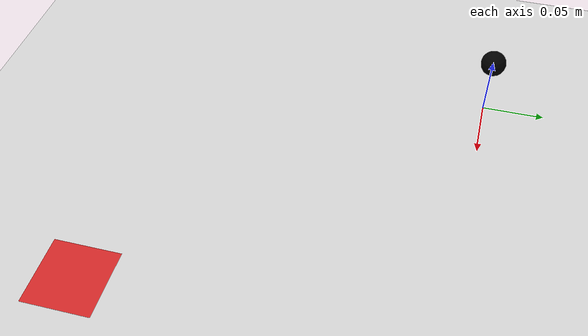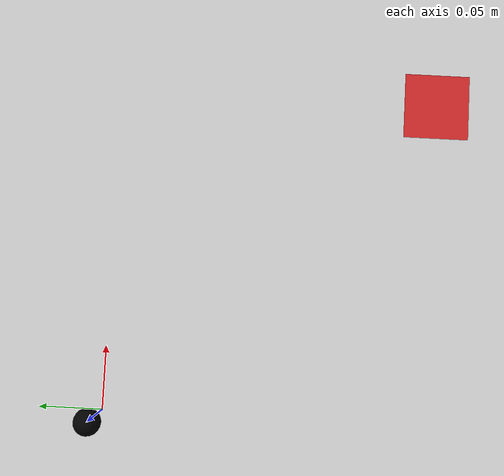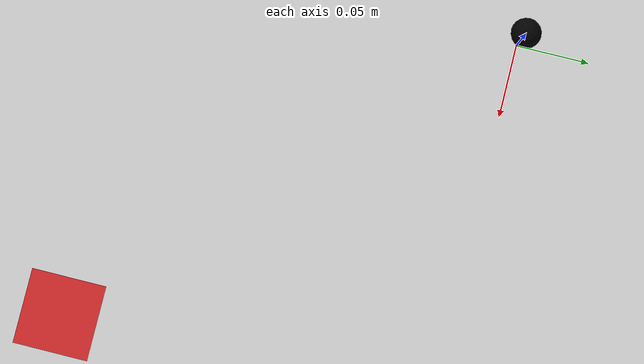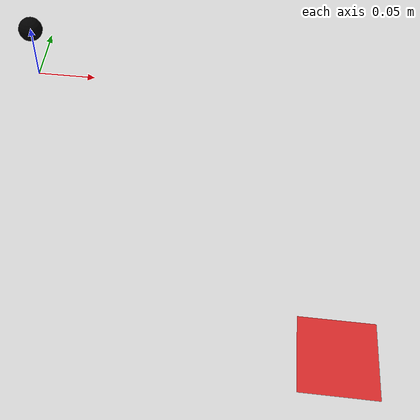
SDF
<?xml version="1.0" ?>
<sdf version="1.7">
  <world name="default">

    <!-- Plugin for simulating physics -->
    <plugin
      filename="gz-sim-physics-system"
      name="gz::sim::systems::Physics">
    </plugin>

    <!-- Plugin for handling user commands -->
    <plugin
      filename="gz-sim-user-commands-system"
      name="gz::sim::systems::UserCommands">
    </plugin>

    <!-- Plugin for broadcasting scene updates -->
    <plugin
      filename="gz-sim-scene-broadcaster-system"
      name="gz::sim::systems::SceneBroadcaster">
    </plugin>

    <!-- Plugin for sensor handling -->
    <plugin
      filename="gz-sim-sensors-system"
      name="gz::sim::systems::Sensors">
      <render_engine>ogre2</render_engine>
    </plugin>

    <!-- To add realistic gravity, do: 0.0 0.0 -9.8, otherwise do 0.0 0.0 0.0 -->
    <gravity>0.0 0.0 -9.8</gravity>

    <!-- Include a model of the Sun from an external URI -->
    <include>
      <uri>
        https://fuel.gazebosim.org/1.0/OpenRobotics/models/Sun
      </uri>
    </include>

    <!-- Include a model of the Ground Plane from an external URI -->
    <include>
      <uri>
        https://fuel.gazebosim.org/1.0/OpenRobotics/models/Ground Plane
      </uri>
    </include>

    <!-- Include the cylinder model -->
    <model name="wood_cube_5cm">
      <pose>0.25 -0.25 0.0 0 0 0</pose>
      <link name="link">
        <pose>0 0 0.025 0 0 0</pose>
        <inertial>
          <mass>0.0565</mass>
          <inertia>
            <ixx>2.3541666666666672e-05</ixx>
            <ixy>0</ixy>
            <ixz>0</ixz>
            <iyy>2.3541666666666672e-05</iyy>
            <iyz>0</iyz>
            <izz>2.3541666666666672e-05</izz>
          </inertia>
        </inertial>

      <collision name="collision">
        <geometry>
          <box>
            <size>0.05 0.05 0.0</size>
          </box>
        </geometry>
        <surface>
          <contact>
            <!-- Red Pine coefficients for longitudinal axis of the wood
                 according to:
                 http://www.fpl.fs.fed.us/documnts/fplgtr/fplgtr113/ch04.pdf -->
            <poissons_ratio>0.347</poissons_ratio>
            <elastic_modulus>8.8e+09</elastic_modulus>
              <ode>
                <kp>100000</kp>
                <kd>1</kd>
                <max_vel>1.0</max_vel>
                <min_depth>0.001</min_depth>
              </ode>
            </contact>
            <friction>
              <torsional>
                <coefficient>1.0</coefficient>
                <use_patch_radius>0</use_patch_radius>
                <surface_radius>0.05</surface_radius>
              </torsional>
            </friction>
          </surface>
        </collision>

        <visual name="visual">
          <geometry>
            <box>
              <size>0.05 0.05 0.0</size>
          </box>
        </geometry>
        <material>
          <script>
            <uri>file://media/materials/scripts/gazebo.material</uri>
            <name>Gazebo/Red</name>
          </script>
        </material>
        </visual>

      </link>
    </model>

    <!-- Black sphere (dot) -->
    <model name="black_dot">
      <pose>0.0 0.0 0.05 0 0 0</pose>
      <link name="link">
        <inertial>
          <mass>0.001</mass>
          <inertia>
            <ixx>1e-07</ixx>
            <ixy>0</ixy>
            <ixz>0</ixz>
            <iyy>1e-07</iyy>
            <iyz>0</iyz>
            <izz>1e-07</izz>
          </inertia>
        </inertial>
        <collision name="collision">
          <geometry>
            <sphere>
              <radius>0.01</radius>
            </sphere>
          </geometry>
        </collision>
        <visual name="visual">
          <geometry>
            <sphere>
              <radius>0.01</radius>
            </sphere>
          </geometry>
          <material>
            <ambient>0 0 0 1</ambient>
            <diffuse>0 0 0 1</diffuse>
            <specular>0 0 0 1</specular>
            <emissive>0 0 0 1</emissive>
          </material>
        </visual>
      </link>
    </model>

  </world>
</sdf>
